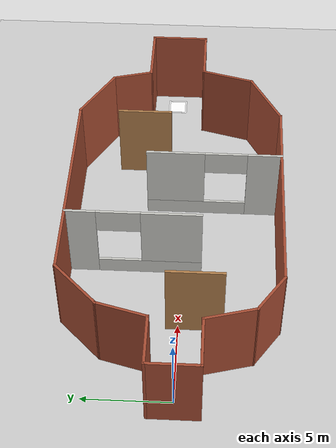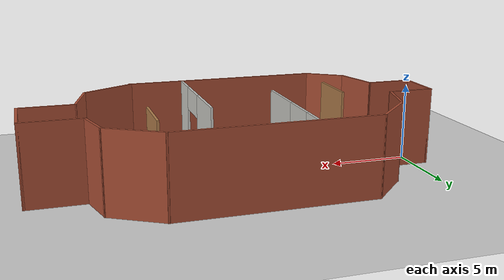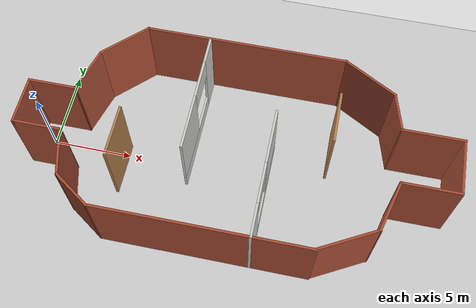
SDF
<?xml version="1.0" ?>
<sdf version="1.5">
  <world name="world_1">
    <!-- A global light source -->
    <include>
      <uri>model://sun</uri>
    </include>
    <!-- A ground plane -->
    <include>
      <uri>model://ground_plane</uri>
    </include>
    <include>
      <uri>model://asphalt_plane</uri>
    </include>
    <!-- ArUco Marker -->
    <include>
      <uri>model://aruco_visual_marker_0</uri>
      <pose>23.475 0.866 0.055 0 0 0 0</pose>
    </include>
    <!-- Obstacles -->
    <include>
      <uri>model://course_1</uri>
      <pose>11.859 0.434 0 0 0 0 0</pose>
    </include>
    <physics name='default_physics' default='0' type='ode'>
      <gravity>0 0 -9.8066</gravity>
      <ode>
        <solver>
          <type>quick</type>
          <iters>10</iters>
          <sor>1.3</sor>
          <use_dynamic_moi_rescaling>0</use_dynamic_moi_rescaling>
        </solver>
        <constraints>
          <cfm>0</cfm>
          <erp>0.2</erp>
          <contact_max_correcting_vel>100</contact_max_correcting_vel>
          <contact_surface_layer>0.001</contact_surface_layer>
        </constraints>
      </ode>
      <max_step_size>0.004</max_step_size>
      <real_time_factor>1</real_time_factor>
      <real_time_update_rate>250</real_time_update_rate>
      <magnetic_field>6.0e-6 2.3e-5 -4.2e-5</magnetic_field>
    </physics>
  </world>
</sdf>

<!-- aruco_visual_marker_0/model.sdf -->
<sdf version='1.5'>
  <model name='aruco_visual_marker_0'>

    <link name='marker'>
      <pose frame=''>0 0 0 0 0 0</pose>
      <visual name='visual'>
        <geometry>
          <box>
            <size>1 1 1e-5</size>
          </box>
        </geometry>
        <material>
          <script>
            <uri>model://aruco_visual_marker_0/materials/scripts</uri>
            <uri>model://aruco_visual_marker_0/materials/textures</uri>
            <name>ArucoVisualMarker0/Marker</name>
          </script>
          <ambient>1 1 1 1</ambient>
          <diffuse>1 1 1 1</diffuse>
          <specular>0 0 0 1</specular>
          <emissive>1 1 1 0</emissive>
          <shader type='vertex'>
            <normal_map>__default__</normal_map>
          </shader>
        </material>
        <pose frame=''>0 0 0 0 -0 0</pose>
        <cast_shadows>1</cast_shadows>
        <transparency>0</transparency>
      </visual>
      <collision name='collision'>
        <laser_retro>0</laser_retro>
        <max_contacts>10</max_contacts>
        <pose frame=''>0 0 0 0 -0 0</pose>
        <geometry>
          <box>
            <size>1 1 1e-05</size>
          </box>
        </geometry>
      </collision>
    </link>

    <link name='marker_pad'>
      <pose frame='marker'>0 0 -1e-3 0 -0 0</pose>
      <visual name='visual'>
        <geometry>
          <box>
            <size>1.2 1.2 1e-5</size>
          </box>
        </geometry>
        <material>
          <lighting>1</lighting>
          <script>
            <uri>file://media/materials/scripts/gazebo.material</uri>
            <name>Gazebo/White</name>
          </script>
          <ambient>0.3 0.3 0.3 1</ambient>
          <diffuse>0.7 0.7 0.7 1</diffuse>
          <specular>0.01 0.01 0.01 1</specular>
          <emissive>1 1 1 0</emissive>
          <shader type='vertex'>
            <normal_map>__default__</normal_map>
          </shader>
        </material>
        <cast_shadows>1</cast_shadows>
        <transparency>0</transparency>
      </visual>
      <collision name='collision'>
        <laser_retro>0</laser_retro>
        <max_contacts>10</max_contacts>
        <pose frame=''>0 0 0 0 -0 0</pose>
        <geometry>
          <box>
            <size>1.2 1.2 1e-5</size>
          </box>
        </geometry>
      </collision>
    </link>

    <joint name='marker_JOINT_marker_pad' type='revolute'>
      <parent>marker</parent>
      <child>marker_pad</child>
      <pose frame=''>0 0 0 0 -0 0</pose>
      <axis>
        <xyz>0 0 0</xyz>
        <limit>
          <upper>0</upper>
          <lower>0</lower>
        </limit>
      </axis>
    </joint>

    <static>1</static>
    <allow_auto_disable>1</allow_auto_disable>

  </model>
</sdf>

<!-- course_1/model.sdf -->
<sdf version='1.5'>
  <model name='course_1'>
    <pose>11.674 0.448669 0 0 -0 0</pose>
    <link name='Wall_38'>
      <collision name='Wall_38_Collision'>
        <geometry>
          <box>
            <size>3 0.15 5</size>
          </box>
        </geometry>
        <pose>0 0 2.5 0 -0 0</pose>
      </collision>
      <visual name='Wall_38_Visual'>
        <pose>0 0 2.5 0 -0 0</pose>
        <geometry>
          <box>
            <size>3 0.15 5</size>
          </box>
        </geometry>
        <material>
          <script>
            <uri>file://media/materials/scripts/gazebo.material</uri>
            <name>Gazebo/Bricks</name>
          </script>
          <ambient>1 1 1 1</ambient>
        </material>
        <meta>
          <layer>0</layer>
        </meta>
      </visual>
      <pose>-12.816 -0.460669 0 0 -0 -1.5708</pose>
    </link>
    <link name='Wall_40'>
      <collision name='Wall_40_Collision'>
        <geometry>
          <box>
            <size>3 0.15 5</size>
          </box>
        </geometry>
        <pose>0 0 2.5 0 -0 0</pose>
      </collision>
      <visual name='Wall_40_Visual'>
        <pose>0 0 2.5 0 -0 0</pose>
        <geometry>
          <box>
            <size>3 0.15 5</size>
          </box>
        </geometry>
        <material>
          <script>
            <uri>file://media/materials/scripts/gazebo.material</uri>
            <name>Gazebo/Bricks</name>
          </script>
          <ambient>1 1 1 1</ambient>
        </material>
        <meta>
          <layer>0</layer>
        </meta>
      </visual>
      <pose>-11.391 0.964331 0 0 -0 0</pose>
    </link>
    <link name='Wall_42'>
      <collision name='Wall_42_Collision'>
        <geometry>
          <box>
            <size>3 0.15 5</size>
          </box>
        </geometry>
        <pose>0 0 2.5 0 -0 0</pose>
      </collision>
      <visual name='Wall_42_Visual'>
        <pose>0 0 2.5 0 -0 0</pose>
        <geometry>
          <box>
            <size>3 0.15 5</size>
          </box>
        </geometry>
        <material>
          <script>
            <uri>file://media/materials/scripts/gazebo.material</uri>
            <name>Gazebo/Bricks</name>
          </script>
          <ambient>1 1 1 1</ambient>
        </material>
        <meta>
          <layer>0</layer>
        </meta>
      </visual>
      <pose>-11.391 -1.88567 0 0 -0 0</pose>
    </link>
    <link name='Wall_44'>
      <collision name='Wall_44_Collision'>
        <geometry>
          <box>
            <size>3.00018 0.15 5</size>
          </box>
        </geometry>
        <pose>0 0 2.5 0 -0 0</pose>
      </collision>
      <visual name='Wall_44_Visual'>
        <pose>0 0 2.5 0 -0 0</pose>
        <geometry>
          <box>
            <size>3.00018 0.15 5</size>
          </box>
        </geometry>
        <material>
          <script>
            <uri>file://media/materials/scripts/gazebo.material</uri>
            <name>Gazebo/Bricks</name>
          </script>
          <ambient>1 1 1 1</ambient>
        </material>
        <meta>
          <layer>0</layer>
        </meta>
      </visual>
      <pose>-9.5974 2.34093 0 0 -0 1.30917</pose>
    </link>
    <link name='Wall_45'>
      <collision name='Wall_45_Collision'>
        <geometry>
          <box>
            <size>3.5 0.15 5</size>
          </box>
        </geometry>
        <pose>0 0 2.5 0 -0 0</pose>
      </collision>
      <visual name='Wall_45_Visual'>
        <pose>0 0 2.5 0 -0 0</pose>
        <geometry>
          <box>
            <size>3.5 0.15 5</size>
          </box>
        </geometry>
        <material>
          <script>
            <uri>file://media/materials/scripts/gazebo.material</uri>
            <name>Gazebo/Bricks</name>
          </script>
          <ambient>1 1 1 1</ambient>
        </material>
        <meta>
          <layer>0</layer>
        </meta>
      </visual>
      <pose>-8.0444 4.90193 0 0 -0 0.785398</pose>
    </link>
    <link name='Wall_46'>
      <collision name='Wall_46_Collision'>
        <geometry>
          <box>
            <size>12.5 0.15 5</size>
          </box>
        </geometry>
        <pose>0 0 2.5 0 -0 0</pose>
      </collision>
      <visual name='Wall_46_Visual'>
        <pose>0 0 2.5 0 -0 0</pose>
        <geometry>
          <box>
            <size>12.5 0.15 5</size>
          </box>
        </geometry>
        <material>
          <script>
            <uri>file://media/materials/scripts/gazebo.material</uri>
            <name>Gazebo/Bricks</name>
          </script>
          <ambient>1 1 1 1</ambient>
        </material>
        <meta>
          <layer>0</layer>
        </meta>
      </visual>
      <pose>-0.685 6.08633 0 0 -0 0</pose>
    </link>
    <link name='Wall_47'>
      <collision name='Wall_47_Collision'>
        <geometry>
          <box>
            <size>3.75027 0.15 5</size>
          </box>
        </geometry>
        <pose>0 0 2.5 0 -0 0</pose>
      </collision>
      <visual name='Wall_47_Visual'>
        <pose>0 0 2.5 0 -0 0</pose>
        <geometry>
          <box>
            <size>3.75027 0.15 5</size>
          </box>
        </geometry>
        <material>
          <script>
            <uri>file://media/materials/scripts/gazebo.material</uri>
            <name>Gazebo/Bricks</name>
          </script>
          <ambient>1 1 1 1</ambient>
        </material>
        <meta>
          <layer>0</layer>
        </meta>
      </visual>
      <pose>7.049 5.18633 0 0 -0 -0.523556</pose>
    </link>
    <link name='Wall_48'>
      <collision name='Wall_48_Collision'>
        <geometry>
          <box>
            <size>2.5 0.15 5</size>
          </box>
        </geometry>
        <pose>0 0 2.5 0 -0 0</pose>
      </collision>
      <visual name='Wall_48_Visual'>
        <pose>0 0 2.5 0 -0 0</pose>
        <geometry>
          <box>
            <size>2.5 0.15 5</size>
          </box>
        </geometry>
        <material>
          <script>
            <uri>file://media/materials/scripts/gazebo.material</uri>
            <name>Gazebo/Bricks</name>
          </script>
          <ambient>1 1 1 1</ambient>
        </material>
        <meta>
          <layer>0</layer>
        </meta>
      </visual>
      <pose>8.912 3.15133 0 0 -0 -1.3091</pose>
    </link>
    <link name='Wall_49'>
      <collision name='Wall_49_Collision'>
        <geometry>
          <box>
            <size>3.75 0.15 5</size>
          </box>
        </geometry>
        <pose>0 0 2.5 0 -0 0</pose>
      </collision>
      <visual name='Wall_49_Visual'>
        <pose>0 0 2.5 0 -0 0</pose>
        <geometry>
          <box>
            <size>3.75 0.15 5</size>
          </box>
        </geometry>
        <material>
          <script>
            <uri>file://media/materials/scripts/gazebo.material</uri>
            <name>Gazebo/Bricks</name>
          </script>
          <ambient>1 1 1 1</ambient>
        </material>
        <meta>
          <layer>0</layer>
        </meta>
      </visual>
      <pose>11.016 2.01633 0 0 -0 0</pose>
    </link>
    <link name='Wall_50'>
      <collision name='Wall_50_Collision'>
        <geometry>
          <box>
            <size>3.5 0.15 5</size>
          </box>
        </geometry>
        <pose>0 0 2.5 0 -0 0</pose>
      </collision>
      <visual name='Wall_50_Visual'>
        <pose>0 0 2.5 0 -0 0</pose>
        <geometry>
          <box>
            <size>3.5 0.15 5</size>
          </box>
        </geometry>
        <material>
          <script>
            <uri>file://media/materials/scripts/gazebo.material</uri>
            <name>Gazebo/Bricks</name>
          </script>
          <ambient>1 1 1 1</ambient>
        </material>
        <meta>
          <layer>0</layer>
        </meta>
      </visual>
      <pose>12.816 0.341331 0 0 -0 -1.5708</pose>
    </link>
    <link name='Wall_51'>
      <collision name='Wall_51_Collision'>
        <geometry>
          <box>
            <size>3.5 0.15 5</size>
          </box>
        </geometry>
        <pose>0 0 2.5 0 -0 0</pose>
      </collision>
      <visual name='Wall_51_Visual'>
        <pose>0 0 2.5 0 -0 0</pose>
        <geometry>
          <box>
            <size>3.5 0.15 5</size>
          </box>
        </geometry>
        <material>
          <script>
            <uri>file://media/materials/scripts/gazebo.material</uri>
            <name>Gazebo/Bricks</name>
          </script>
          <ambient>1 1 1 1</ambient>
        </material>
        <meta>
          <layer>0</layer>
        </meta>
      </visual>
      <pose>11.141 -1.33367 0 0 -0 3.14159</pose>
    </link>
    <link name='Wall_52'>
      <collision name='Wall_52_Collision'>
        <geometry>
          <box>
            <size>3.25 0.15 5</size>
          </box>
        </geometry>
        <pose>0 0 2.5 0 -0 0</pose>
      </collision>
      <visual name='Wall_52_Visual'>
        <pose>0 0 2.5 0 -0 0</pose>
        <geometry>
          <box>
            <size>3.25 0.15 5</size>
          </box>
        </geometry>
        <material>
          <script>
            <uri>file://media/materials/scripts/gazebo.material</uri>
            <name>Gazebo/Bricks</name>
          </script>
          <ambient>1 1 1 1</ambient>
        </material>
        <meta>
          <layer>0</layer>
        </meta>
      </visual>
      <pose>9.065 -2.83117 0 0 -0 -1.83244</pose>
    </link>
    <link name='Wall_53'>
      <collision name='Wall_53_Collision'>
        <geometry>
          <box>
            <size>3.74599 0.15 5</size>
          </box>
        </geometry>
        <pose>0 0 2.5 0 -0 0</pose>
      </collision>
      <visual name='Wall_53_Visual'>
        <pose>0 0 2.5 0 -0 0</pose>
        <geometry>
          <box>
            <size>3.74599 0.15 5</size>
          </box>
        </geometry>
        <material>
          <script>
            <uri>file://media/materials/scripts/gazebo.material</uri>
            <name>Gazebo/Bricks</name>
          </script>
          <ambient>1 1 1 1</ambient>
        </material>
        <meta>
          <layer>0</layer>
        </meta>
      </visual>
      <pose>7.08477 -5.18821 0 0 -0 -2.64315</pose>
    </link>
    <link name='Wall_54'>
      <collision name='Wall_54_Collision'>
        <geometry>
          <box>
            <size>12.75 0.15 5</size>
          </box>
        </geometry>
        <pose>0 0 2.5 0 -0 0</pose>
      </collision>
      <visual name='Wall_54_Visual'>
        <pose>0 0 2.5 0 -0 0</pose>
        <geometry>
          <box>
            <size>12.75 0.15 5</size>
          </box>
        </geometry>
        <material>
          <script>
            <uri>file://media/materials/scripts/gazebo.material</uri>
            <name>Gazebo/Bricks</name>
          </script>
          <ambient>1 1 1 1</ambient>
        </material>
        <meta>
          <layer>0</layer>
        </meta>
      </visual>
      <pose>-0.794456 -6.08821 0 0 -0 3.14159</pose>
    </link>
    <link name='Wall_55'>
      <collision name='Wall_55_Collision'>
        <geometry>
          <box>
            <size>2.72974 0.15 5</size>
          </box>
        </geometry>
        <pose>0 0 2.5 0 -0 0</pose>
      </collision>
      <visual name='Wall_55_Visual'>
        <pose>0 0 2.5 0 -0 0</pose>
        <geometry>
          <box>
            <size>2.72974 0.15 5</size>
          </box>
        </geometry>
        <material>
          <script>
            <uri>file://media/materials/scripts/gazebo.material</uri>
            <name>Gazebo/Bricks</name>
          </script>
          <ambient>1 1 1 1</ambient>
        </material>
        <meta>
          <layer>0</layer>
        </meta>
      </visual>
      <pose>-8.16141 -5.36339 0 0 -0 2.54487</pose>
    </link>
    <link name='Wall_56'>
      <collision name='Wall_56_Collision'>
        <geometry>
          <box>
            <size>3 0.15 5</size>
          </box>
        </geometry>
        <pose>0 0 2.5 0 -0 0</pose>
      </collision>
      <visual name='Wall_56_Visual'>
        <pose>0 0 2.5 0 -0 0</pose>
        <geometry>
          <box>
            <size>3 0.15 5</size>
          </box>
        </geometry>
        <material>
          <script>
            <uri>file://media/materials/scripts/gazebo.material</uri>
            <name>Gazebo/Bricks</name>
          </script>
          <ambient>1 1 1 1</ambient>
        </material>
        <meta>
          <layer>0</layer>
        </meta>
      </visual>
      <pose>-9.59718 -3.26211 0 0 -0 1.8326</pose>
    </link>
    <link name='Wall_58'>
      <pose>-2.907 2.24533 0 0 -0 -1.5708</pose>
      <visual name='Wall_58_Visual_0'>
        <pose>-2.98587 0 2.5 0 -0 0</pose>
        <geometry>
          <box>
            <size>1.77826 0.15 5</size>
          </box>
        </geometry>
        <material>
          <script>
            <uri>file://media/materials/scripts/gazebo.material</uri>
            <name>Gazebo/CeilingTiled</name>
          </script>
          <ambient>1 1 1 1</ambient>
        </material>
        <meta>
          <layer>0</layer>
        </meta>
      </visual>
      <collision name='Wall_58_Collision_0'>
        <geometry>
          <box>
            <size>1.77826 0.15 5</size>
          </box>
        </geometry>
        <pose>-2.98587 0 2.5 0 -0 0</pose>
      </collision>
      <visual name='Wall_58_Visual_1'>
        <pose>0.889129 0 0.5 0 -0 0</pose>
        <geometry>
          <box>
            <size>5.97174 0.15 1</size>
          </box>
        </geometry>
        <material>
          <script>
            <uri>file://media/materials/scripts/gazebo.material</uri>
            <name>Gazebo/CeilingTiled</name>
          </script>
          <ambient>1 1 1 1</ambient>
        </material>
        <meta>
          <layer>0</layer>
        </meta>
      </visual>
      <collision name='Wall_58_Collision_1'>
        <geometry>
          <box>
            <size>5.97174 0.15 1</size>
          </box>
        </geometry>
        <pose>0.889129 0 0.5 0 -0 0</pose>
      </collision>
      <visual name='Wall_58_Visual_2'>
        <pose>2.13913 0 3 0 -0 0</pose>
        <geometry>
          <box>
            <size>3.47174 0.15 4</size>
          </box>
        </geometry>
        <material>
          <script>
            <uri>file://media/materials/scripts/gazebo.material</uri>
            <name>Gazebo/CeilingTiled</name>
          </script>
          <ambient>1 1 1 1</ambient>
        </material>
        <meta>
          <layer>0</layer>
        </meta>
      </visual>
      <collision name='Wall_58_Collision_2'>
        <geometry>
          <box>
            <size>3.47174 0.15 4</size>
          </box>
        </geometry>
        <pose>2.13913 0 3 0 -0 0</pose>
      </collision>
      <visual name='Wall_58_Visual_3'>
        <pose>-0.846742 0 4.25 0 -0 0</pose>
        <geometry>
          <box>
            <size>2.5 0.15 1.5</size>
          </box>
        </geometry>
        <material>
          <script>
            <uri>file://media/materials/scripts/gazebo.material</uri>
            <name>Gazebo/CeilingTiled</name>
          </script>
          <ambient>1 1 1 1</ambient>
        </material>
        <meta>
          <layer>0</layer>
        </meta>
      </visual>
      <collision name='Wall_58_Collision_3'>
        <geometry>
          <box>
            <size>2.5 0.15 1.5</size>
          </box>
        </geometry>
        <pose>-0.846742 0 4.25 0 -0 0</pose>
      </collision>
    </link>
    <link name='Wall_60'>
      <pose>1.988 -2.16667 0 0 -0 1.5708</pose>
      <visual name='Wall_60_Visual_0'>
        <pose>-2.96911 0 2.5 0 -0 0</pose>
        <geometry>
          <box>
            <size>2.06177 0.15 5</size>
          </box>
        </geometry>
        <material>
          <script>
            <uri>file://media/materials/scripts/gazebo.material</uri>
            <name>Gazebo/CeilingTiled</name>
          </script>
          <ambient>1 1 1 1</ambient>
        </material>
        <meta>
          <layer>0</layer>
        </meta>
      </visual>
      <collision name='Wall_60_Collision_0'>
        <geometry>
          <box>
            <size>2.06177 0.15 5</size>
          </box>
        </geometry>
        <pose>-2.96911 0 2.5 0 -0 0</pose>
      </collision>
      <visual name='Wall_60_Visual_1'>
        <pose>1.03089 0 0.5 0 -0 0</pose>
        <geometry>
          <box>
            <size>5.93823 0.15 1</size>
          </box>
        </geometry>
        <material>
          <script>
            <uri>file://media/materials/scripts/gazebo.material</uri>
            <name>Gazebo/CeilingTiled</name>
          </script>
          <ambient>1 1 1 1</ambient>
        </material>
        <meta>
          <layer>0</layer>
        </meta>
      </visual>
      <collision name='Wall_60_Collision_1'>
        <geometry>
          <box>
            <size>5.93823 0.15 1</size>
          </box>
        </geometry>
        <pose>1.03089 0 0.5 0 -0 0</pose>
      </collision>
      <visual name='Wall_60_Visual_2'>
        <pose>2.28089 0 3 0 -0 0</pose>
        <geometry>
          <box>
            <size>3.43823 0.15 4</size>
          </box>
        </geometry>
        <material>
          <script>
            <uri>file://media/materials/scripts/gazebo.material</uri>
            <name>Gazebo/CeilingTiled</name>
          </script>
          <ambient>1 1 1 1</ambient>
        </material>
        <meta>
          <layer>0</layer>
        </meta>
      </visual>
      <collision name='Wall_60_Collision_2'>
        <geometry>
          <box>
            <size>3.43823 0.15 4</size>
          </box>
        </geometry>
        <pose>2.28089 0 3 0 -0 0</pose>
      </collision>
      <visual name='Wall_60_Visual_3'>
        <pose>-0.688227 0 4.25 0 -0 0</pose>
        <geometry>
          <box>
            <size>2.5 0.15 1.5</size>
          </box>
        </geometry>
        <material>
          <script>
            <uri>file://media/materials/scripts/gazebo.material</uri>
            <name>Gazebo/CeilingTiled</name>
          </script>
          <ambient>1 1 1 1</ambient>
        </material>
        <meta>
          <layer>0</layer>
        </meta>
      </visual>
      <collision name='Wall_60_Collision_3'>
        <geometry>
          <box>
            <size>2.5 0.15 1.5</size>
          </box>
        </geometry>
        <pose>-0.688227 0 4.25 0 -0 0</pose>
      </collision>
    </link>
    <link name='Wall_62'>
      <collision name='Wall_62_Collision'>
        <geometry>
          <box>
            <size>3.25 0.15 5</size>
          </box>
        </geometry>
        <pose>0 0 2.5 0 -0 0</pose>
      </collision>
      <visual name='Wall_62_Visual'>
        <pose>0 0 2.5 0 -0 0</pose>
        <geometry>
          <box>
            <size>3.25 0.15 5</size>
          </box>
        </geometry>
        <material>
          <script>
            <uri>file://media/materials/scripts/gazebo.material</uri>
            <name>Gazebo/Wood</name>
          </script>
          <ambient>1 1 1 1</ambient>
        </material>
        <meta>
          <layer>0</layer>
        </meta>
      </visual>
      <pose>-6.993 -1.37067 0 0 -0 -1.5708</pose>
    </link>
    <link name='Wall_64'>
      <collision name='Wall_64_Collision'>
        <geometry>
          <box>
            <size>3.25 0.15 5</size>
          </box>
        </geometry>
        <pose>0 0 2.5 0 -0 0</pose>
      </collision>
      <visual name='Wall_64_Visual'>
        <pose>0 0 2.5 0 -0 0</pose>
        <geometry>
          <box>
            <size>3.25 0.15 5</size>
          </box>
        </geometry>
        <material>
          <script>
            <uri>file://media/materials/scripts/gazebo.material</uri>
            <name>Gazebo/Wood</name>
          </script>
          <ambient>1 1 1 1</ambient>
        </material>
        <meta>
          <layer>0</layer>
        </meta>
      </visual>
      <pose>5.508 2.14933 0 0 -0 -1.5708</pose>
    </link>
    <static>1</static>
  </model>
</sdf>
